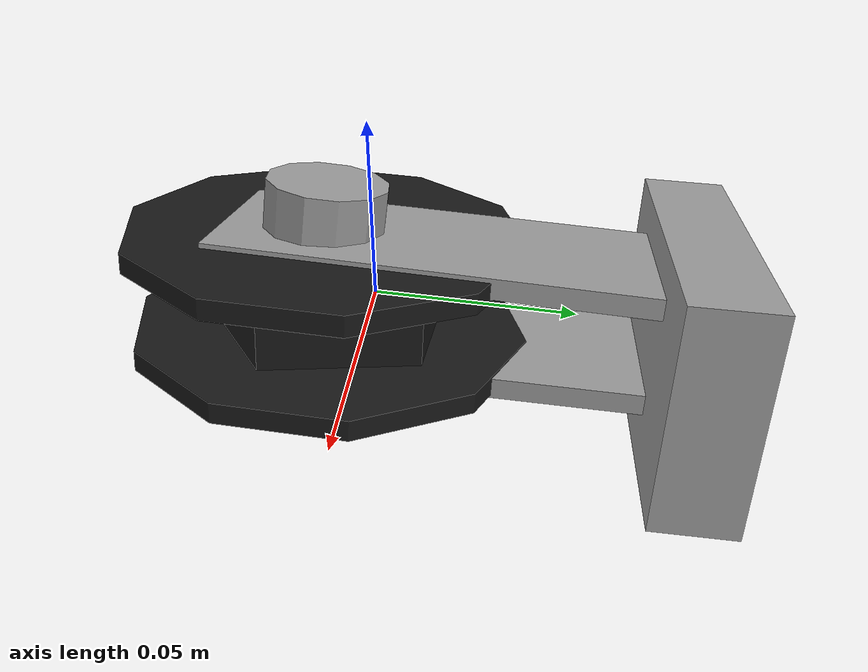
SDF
<sdf version='1.6'>
	<world name='default'>
	<gravity>0 0 -9.8</gravity>
		<model name='part0.obj'>
			<static>1</static>
			<pose frame=''>0 0 0 0 0 0</pose>
			<link name='link_d0'>
			<inertial>
			<mass>0</mass>
			<inertia>
			<ixx>0.166667</ixx>
			<ixy>0</ixy>
			<ixz>0</ixz>
			<iyy>0.166667</iyy>
			<iyz>0</iyz>
			<izz>0.166667</izz>
			</inertia>
			</inertial>
			<collision name='collision_0'>
			<geometry>
			<mesh>
			<scale>1 1 1</scale>
				<uri>part0.obj</uri>
			</mesh>
			</geometry>
			  </collision>
			<visual name='visual'>
				<geometry>
				<mesh>
					<scale>1 1 1</scale>
					<uri>part0.obj</uri>
				</mesh>
				</geometry>
			<material>
				<ambient>1 0 0 1</ambient>
				<diffuse>0.620000 0.620000 0.620000 1.000000</diffuse>
				<specular>0.1 0.1 0.1 1</specular>
				<emissive>0 0 0 0</emissive>
			 </material>
			 </visual>
			 </link>
			</model>
		<model name='part1.obj'>
			<static>1</static>
			<pose frame=''>0 0 0 0 0 0</pose>
			<link name='link_d1'>
			<inertial>
			<mass>0</mass>
			<inertia>
			<ixx>0.166667</ixx>
			<ixy>0</ixy>
			<ixz>0</ixz>
			<iyy>0.166667</iyy>
			<iyz>0</iyz>
			<izz>0.166667</izz>
			</inertia>
			</inertial>
			<collision name='collision_1'>
			<geometry>
			<mesh>
			<scale>1 1 1</scale>
				<uri>part1.obj</uri>
			</mesh>
			</geometry>
			  </collision>
			<visual name='visual'>
				<geometry>
				<mesh>
					<scale>1 1 1</scale>
					<uri>part1.obj</uri>
				</mesh>
				</geometry>
			<material>
				<ambient>1 0 0 1</ambient>
				<diffuse>0.620000 0.620000 0.620000 1.000000</diffuse>
				<specular>0.1 0.1 0.1 1</specular>
				<emissive>0 0 0 0</emissive>
			 </material>
			 </visual>
			 </link>
			</model>
		<model name='part2.obj'>
			<static>1</static>
			<pose frame=''>0 0 0 0 0 0</pose>
			<link name='link_d2'>
			<inertial>
			<mass>0</mass>
			<inertia>
			<ixx>0.166667</ixx>
			<ixy>0</ixy>
			<ixz>0</ixz>
			<iyy>0.166667</iyy>
			<iyz>0</iyz>
			<izz>0.166667</izz>
			</inertia>
			</inertial>
			<collision name='collision_2'>
			<geometry>
			<mesh>
			<scale>1 1 1</scale>
				<uri>part2.obj</uri>
			</mesh>
			</geometry>
			  </collision>
			<visual name='visual'>
				<geometry>
				<mesh>
					<scale>1 1 1</scale>
					<uri>part2.obj</uri>
				</mesh>
				</geometry>
			<material>
				<ambient>1 0 0 1</ambient>
				<diffuse>0.620000 0.620000 0.620000 1.000000</diffuse>
				<specular>0.1 0.1 0.1 1</specular>
				<emissive>0 0 0 0</emissive>
			 </material>
			 </visual>
			 </link>
			</model>
		<model name='part3.obj'>
			<static>1</static>
			<pose frame=''>0 0 0 0 0 0</pose>
			<link name='link_d3'>
			<inertial>
			<mass>0</mass>
			<inertia>
			<ixx>0.166667</ixx>
			<ixy>0</ixy>
			<ixz>0</ixz>
			<iyy>0.166667</iyy>
			<iyz>0</iyz>
			<izz>0.166667</izz>
			</inertia>
			</inertial>
			<collision name='collision_3'>
			<geometry>
			<mesh>
			<scale>1 1 1</scale>
				<uri>part3.obj</uri>
			</mesh>
			</geometry>
			  </collision>
			<visual name='visual'>
				<geometry>
				<mesh>
					<scale>1 1 1</scale>
					<uri>part3.obj</uri>
				</mesh>
				</geometry>
			<material>
				<ambient>1 0 0 1</ambient>
				<diffuse>0.100000 0.100000 0.100000 1.000000</diffuse>
				<specular>0.1 0.1 0.1 1</specular>
				<emissive>0 0 0 0</emissive>
			 </material>
			 </visual>
			 </link>
			</model>
		<model name='part4.obj'>
			<static>1</static>
			<pose frame=''>0 0 0 0 0 0</pose>
			<link name='link_d4'>
			<inertial>
			<mass>0</mass>
			<inertia>
			<ixx>0.166667</ixx>
			<ixy>0</ixy>
			<ixz>0</ixz>
			<iyy>0.166667</iyy>
			<iyz>0</iyz>
			<izz>0.166667</izz>
			</inertia>
			</inertial>
			<collision name='collision_4'>
			<geometry>
			<mesh>
			<scale>1 1 1</scale>
				<uri>part4.obj</uri>
			</mesh>
			</geometry>
			  </collision>
			<visual name='visual'>
				<geometry>
				<mesh>
					<scale>1 1 1</scale>
					<uri>part4.obj</uri>
				</mesh>
				</geometry>
			<material>
				<ambient>1 0 0 1</ambient>
				<diffuse>0.100000 0.100000 0.100000 1.000000</diffuse>
				<specular>0.1 0.1 0.1 1</specular>
				<emissive>0 0 0 0</emissive>
			 </material>
			 </visual>
			 </link>
			</model>
		<model name='part5.obj'>
			<static>1</static>
			<pose frame=''>0 0 0 0 0 0</pose>
			<link name='link_d5'>
			<inertial>
			<mass>0</mass>
			<inertia>
			<ixx>0.166667</ixx>
			<ixy>0</ixy>
			<ixz>0</ixz>
			<iyy>0.166667</iyy>
			<iyz>0</iyz>
			<izz>0.166667</izz>
			</inertia>
			</inertial>
			<collision name='collision_5'>
			<geometry>
			<mesh>
			<scale>1 1 1</scale>
				<uri>part5.obj</uri>
			</mesh>
			</geometry>
			  </collision>
			<visual name='visual'>
				<geometry>
				<mesh>
					<scale>1 1 1</scale>
					<uri>part5.obj</uri>
				</mesh>
				</geometry>
			<material>
				<ambient>1 0 0 1</ambient>
				<diffuse>0.620000 0.620000 0.620000 1.000000</diffuse>
				<specular>0.1 0.1 0.1 1</specular>
				<emissive>0 0 0 0</emissive>
			 </material>
			 </visual>
			 </link>
			</model>
		<model name='part6.obj'>
			<static>1</static>
			<pose frame=''>0 0 0 0 0 0</pose>
			<link name='link_d6'>
			<inertial>
			<mass>0</mass>
			<inertia>
			<ixx>0.166667</ixx>
			<ixy>0</ixy>
			<ixz>0</ixz>
			<iyy>0.166667</iyy>
			<iyz>0</iyz>
			<izz>0.166667</izz>
			</inertia>
			</inertial>
			<collision name='collision_6'>
			<geometry>
			<mesh>
			<scale>1 1 1</scale>
				<uri>part6.obj</uri>
			</mesh>
			</geometry>
			  </collision>
			<visual name='visual'>
				<geometry>
				<mesh>
					<scale>1 1 1</scale>
					<uri>part6.obj</uri>
				</mesh>
				</geometry>
			<material>
				<ambient>1 0 0 1</ambient>
				<diffuse>0.620000 0.620000 0.620000 1.000000</diffuse>
				<specular>0.1 0.1 0.1 1</specular>
				<emissive>0 0 0 0</emissive>
			 </material>
			 </visual>
			 </link>
			</model>
	</world>
</sdf>
